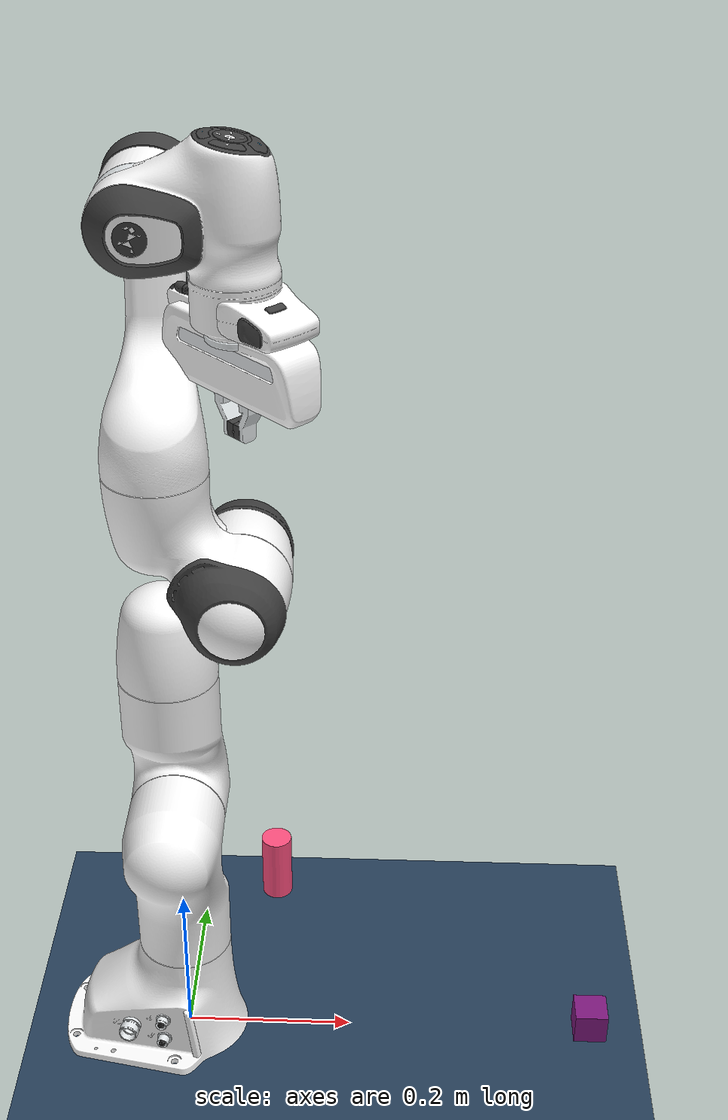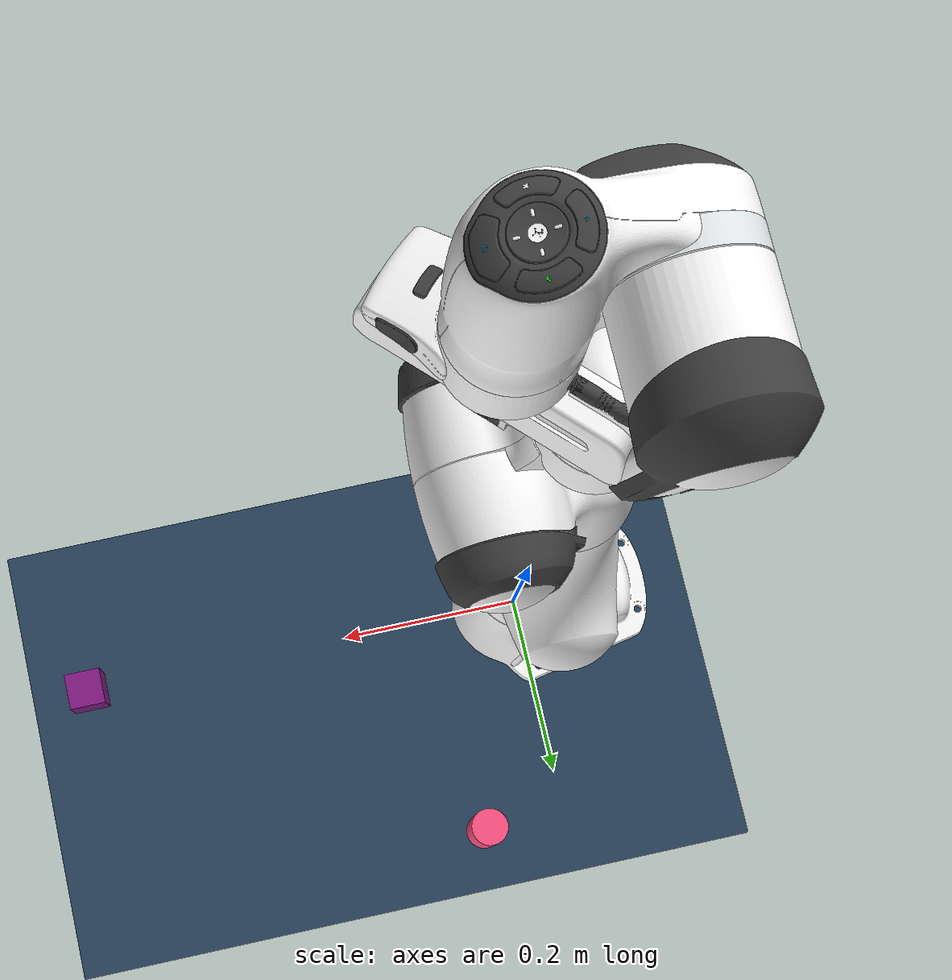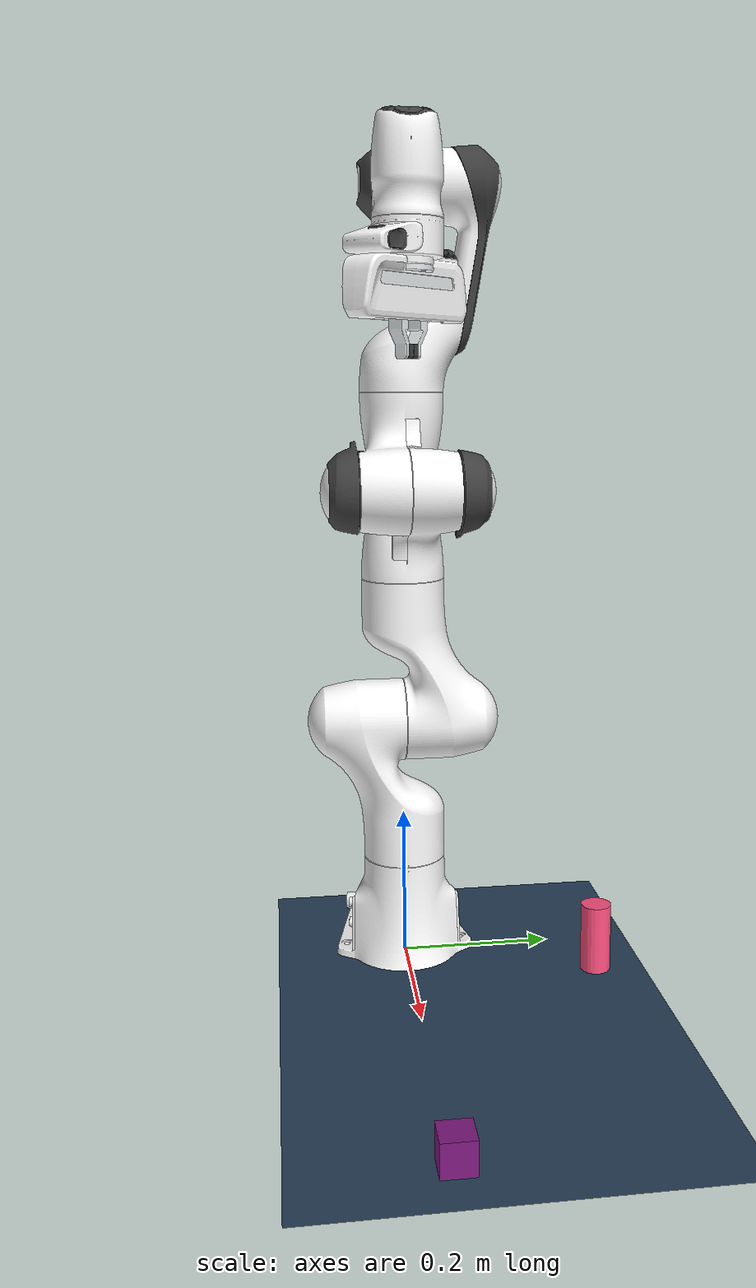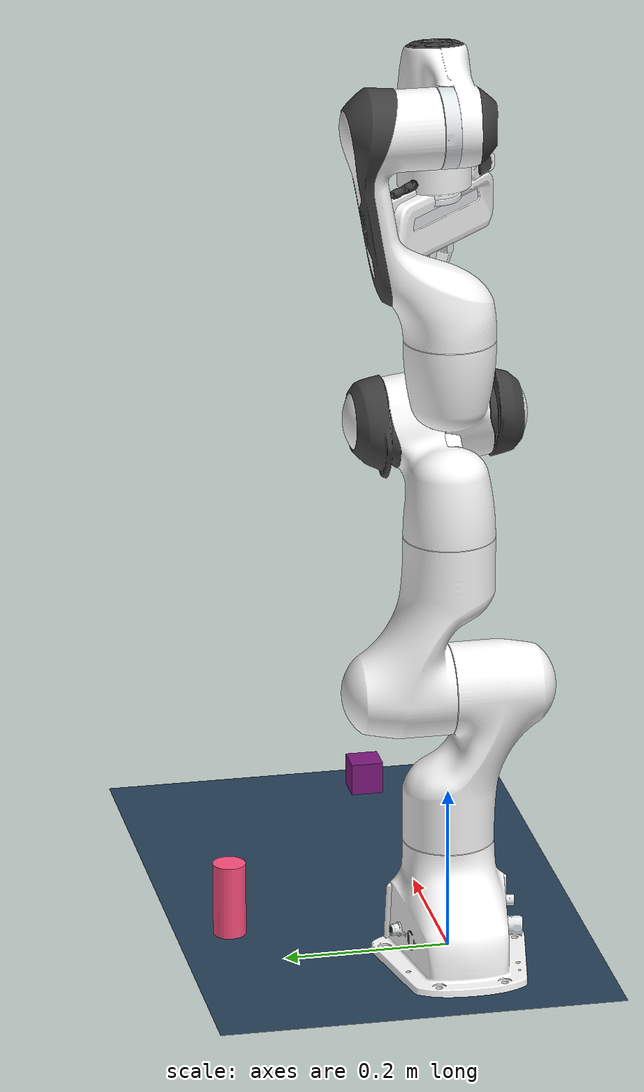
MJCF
<mujoco model="panda scene">

  <include file="panda_steer.xml"/>

  <statistic center="0.3 0 0.4" extent="1"/>

  <default>
    <default class="scene">
      <geom contype="10" conaffinity="10"></geom>
    </default>
  </default>

  <visual>
    <headlight diffuse="0.6 0.6 0.6" ambient="0.3 0.3 0.3" specular="0 0 0"/>
    <rgba haze="0.15 0.25 0.35 1"/>
    <global azimuth="120" elevation="-20"/>
  </visual>

  <asset>
    <texture type="skybox" builtin="gradient" rgb1="0.3 0.5 0.7" rgb2="0 0 0" width="512" height="3072"/>
    <texture type="2d" name="groundplane" builtin="checker" mark="edge" rgb1="0.2 0.3 0.4" rgb2="0.1 0.2 0.3"
      markrgb="0.8 0.8 0.8" width="300" height="300"/>
    <material name="groundplane" texture="groundplane" texuniform="true" texrepeat="5 5" reflectance="0.2"/>
  </asset>

  <worldbody>
    <light pos="0 0 1.5" dir="0 0 -1" directional="true"/>
    <geom name="floor" class="scene" size="0 0 0.05" type="plane" material="groundplane"/>
    <body name="box_body" pos="0.5 0 .02"> <!-- this is how you add an object to the scene -->
    	<freejoint name="box_joint"/>
    	<geom name="box_geom" contype="15" conaffinity="15" size=".02 .02 .02" type="box" rgba=".5 .1 .5 1" mass="0.05" friction="2" solimp="0.95 0.99 0.001" solref="0.005 1"/>
    </body>
    <body name="cyl_body" pos="0.0925 0.25 0.04">
    	<freejoint name="cyl_joint"/>
    	<geom name="cyl_geom" contype="0" conaffinity="0" size=".02 .05 .02" type="cylinder" rgba="1 .3125 .5 1" mass="0.05" friction="2" solimp="0.95 0.99 0.001" solref="0.005 1"/>
    </body>
    <body name="test" pos="0.0925 0.25 0.04">
    	<geom name="test" contype="0" conaffinity="0" size=".1 .1 .1" type="sphere" rgba="1 .3125 .5 0" mass="0.05" friction="2" solimp="0.95 0.99 0.001" solref="0.005 1"/>
    </body>

    <body name="body_cam" pos="3 0 .75" xyaxes="0 1 0 0 0 1" mocap="true">
      <camera name="cam" fovy="90"/>
      <geom name="geom_cam" size="0.04 0.04 0.01" type="box" rgba="0 0 0 0" contype="0" conaffinity="0"/>
    </body>
  </worldbody>

</mujoco>

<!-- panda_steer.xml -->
<mujoco model="panda steer">
  <compiler angle="radian" meshdir="assets" autolimits="true"/>

  <option integrator="implicitfast"/>

  <default>
    <default class="panda">
      <joint range="-2.8973 2.8973"/>
      <default class="inflate_gripper"> <!-- size_y = .015: even with gripper-->
        <geom type="box" size="0.01 0.015 0.0275" rgba="1 0 0 0" pos="0 0.015 0.025"/>
      </default>
      <default class="visual">
        <geom type="mesh" contype="0" conaffinity="0" group="2"/>
      </default>
      <default class="collision">
        <geom type="mesh" group="3"/>

        <default class="fingertip_pad_collision_1">
          <geom type="box" size="0.0085 0.004 0.0085" pos="0 0.0055 0.0445"/>
        </default>
        <default class="fingertip_pad_collision_2">
          <geom type="box" size="0.003 0.002 0.003" pos="0.0055 0.002 0.05"/>
        </default>
        <default class="fingertip_pad_collision_3">
          <geom type="box" size="0.003 0.002 0.003" pos="-0.0055 0.002 0.05"/>
        </default>
        <default class="fingertip_pad_collision_4">
          <geom type="box" size="0.003 0.002 0.0035" pos="0.0055 0.002 0.0395"/>
        </default>
        <default class="fingertip_pad_collision_5">
          <geom type="box" size="0.003 0.002 0.0035" pos="-0.0055 0.002 0.0395"/>
        </default>
      </default>
      <default class="position_actuation">
        <default class="big_joint">
          <position kp="2000" kv="200"/>
        </default>
        <default class="small_joint">
          <position kp="500" kv="50"/>
        </default>
      </default>

      <default class="finger">
        <joint axis="0 1 0" type="slide" range="0 0.04"/>
      </default>
    </default>
  </default>

  <asset>
    <material name="white" rgba="1 1 1 1"/>
    <material name="off_white" rgba="0.901961 0.921569 0.929412 1"/>
    <material name="dark_grey" rgba="0.25 0.25 0.25 1"/>
    <material name="green" rgba="0 1 0 1"/>
    <material name="light_blue" rgba="0.039216 0.541176 0.780392 1"/>
    <material name="black" rgba="0.25 0.25 0.25 1"/>

    <!-- Collision meshes -->
    <mesh name="link0_c" file="link0.stl"/>
    <mesh name="link1_c" file="link1.stl"/>
    <mesh name="link2_c" file="link2.stl"/>
    <mesh name="link3_c" file="link3.stl"/>
    <mesh name="link4_c" file="link4.stl"/>
    <mesh name="link5_c0" file="link5_collision_0.obj"/>
    <mesh name="link5_c1" file="link5_collision_1.obj"/>
    <mesh name="link5_c2" file="link5_collision_2.obj"/>
    <mesh name="link6_c" file="link6.stl"/>
    <mesh name="link7_c" file="link7.stl"/>
    <mesh name="hand_c" file="hand.stl"/>

    <!-- Visual meshes -->
    <mesh file="link0_0.obj"/>
    <mesh file="link0_1.obj"/>
    <mesh file="link0_2.obj"/>
    <mesh file="link0_3.obj"/>
    <mesh file="link0_4.obj"/>
    <mesh file="link0_5.obj"/>
    <mesh file="link0_7.obj"/>
    <mesh file="link0_8.obj"/>
    <mesh file="link0_9.obj"/>
    <mesh file="link0_10.obj"/>
    <mesh file="link0_11.obj"/>
    <mesh file="link1.obj"/>
    <mesh file="link2.obj"/>
    <mesh file="link3_0.obj"/>
    <mesh file="link3_1.obj"/>
    <mesh file="link3_2.obj"/>
    <mesh file="link3_3.obj"/>
    <mesh file="link4_0.obj"/>
    <mesh file="link4_1.obj"/>
    <mesh file="link4_2.obj"/>
    <mesh file="link4_3.obj"/>
    <mesh file="link5_0.obj"/>
    <mesh file="link5_1.obj"/>
    <mesh file="link5_2.obj"/>
    <mesh file="link6_0.obj"/>
    <mesh file="link6_1.obj"/>
    <mesh file="link6_2.obj"/>
    <mesh file="link6_3.obj"/>
    <mesh file="link6_4.obj"/>
    <mesh file="link6_5.obj"/>
    <mesh file="link6_6.obj"/>
    <mesh file="link6_7.obj"/>
    <mesh file="link6_8.obj"/>
    <mesh file="link6_9.obj"/>
    <mesh file="link6_10.obj"/>
    <mesh file="link6_11.obj"/>
    <mesh file="link6_12.obj"/>
    <mesh file="link6_13.obj"/>
    <mesh file="link6_14.obj"/>
    <mesh file="link6_15.obj"/>
    <mesh file="link6_16.obj"/>
    <mesh file="link7_0.obj"/>
    <mesh file="link7_1.obj"/>
    <mesh file="link7_2.obj"/>
    <mesh file="link7_3.obj"/>
    <mesh file="link7_4.obj"/>
    <mesh file="link7_5.obj"/>
    <mesh file="link7_6.obj"/>
    <mesh file="link7_7.obj"/>
    <mesh file="hand_0.obj"/>
    <mesh file="hand_1.obj"/>
    <mesh file="hand_2.obj"/>
    <mesh file="hand_3.obj"/>
    <mesh file="hand_4.obj"/>
    <mesh file="finger_0.obj"/>
    <mesh file="finger_1.obj"/>
  </asset>

  <worldbody>
    <light name="top" pos="0 0 2" mode="trackcom"/>
    <body name="link0" childclass="panda">
      <inertial mass="0.629769" pos="-0.041018 -0.00014 0.049974"
        fullinertia="0.00315 0.00388 0.004285 8.2904e-7 0.00015 8.2299e-6"/>
      <geom mesh="link0_0" material="off_white" class="visual"/>
      <geom mesh="link0_1" material="black" class="visual"/>
      <geom mesh="link0_2" material="off_white" class="visual"/>
      <geom mesh="link0_3" material="black" class="visual"/>
      <geom mesh="link0_4" material="off_white" class="visual"/>
      <geom mesh="link0_5" material="black" class="visual"/>
      <geom mesh="link0_7" material="white" class="visual"/>
      <geom mesh="link0_8" material="white" class="visual"/>
      <geom mesh="link0_9" material="black" class="visual"/>
      <geom mesh="link0_10" material="off_white" class="visual"/>
      <geom mesh="link0_11" material="white" class="visual"/>
      <geom mesh="link0_c" class="collision"/>
      <body name="link1" pos="0 0 0.333">
        <inertial mass="4.970684" pos="0.003875 0.002081 -0.04762"
          fullinertia="0.70337 0.70661 0.0091170 -0.00013900 0.0067720 0.019169"/>
        <joint name="base_yaw"/>
        <geom material="white" mesh="link1" class="visual"/>
        <geom mesh="link1_c" class="collision"/>
        <body name="link2" quat="1 -1 0 0">
          <inertial mass="0.646926" pos="-0.003141 -0.02872 0.003495"
            fullinertia="0.0079620 2.8110e-2 2.5995e-2 -3.925e-3 1.0254e-2 7.04e-4"/>
          <joint name="base_pitch" range="-1.7628 1.7628"/>
          <geom material="white" mesh="link2" class="visual"/>
          <geom mesh="link2_c" class="collision"/>
          <body name="link3" pos="0 -0.316 0" quat="1 1 0 0">
            <joint name="base_roll"/>
            <inertial mass="3.228604" pos="2.7518e-2 3.9252e-2 -6.6502e-2"
              fullinertia="3.7242e-2 3.6155e-2 1.083e-2 -4.761e-3 -1.1396e-2 -1.2805e-2"/>
            <geom mesh="link3_0" material="white" class="visual"/>
            <geom mesh="link3_1" material="white" class="visual"/>
            <geom mesh="link3_2" material="white" class="visual"/>
            <geom mesh="link3_3" material="black" class="visual"/>
            <geom mesh="link3_c" class="collision"/>
            <body name="link4" pos="0.0825 0 0" quat="1 1 0 0">
              <inertial mass="3.587895" pos="-5.317e-2 1.04419e-1 2.7454e-2"
                fullinertia="2.5853e-2 1.9552e-2 2.8323e-2 7.796e-3 -1.332e-3 8.641e-3"/>
              <joint name="joint_1_pitch" range="-3.0718 -0.0698"/>
              <geom mesh="link4_0" material="white" class="visual"/>
              <geom mesh="link4_1" material="white" class="visual"/>
              <geom mesh="link4_2" material="black" class="visual"/>
              <geom mesh="link4_3" material="white" class="visual"/>
              <geom mesh="link4_c" class="collision"/>
              <body name="link5" pos="-0.0825 0.384 0" quat="1 -1 0 0">
                <inertial mass="1.225946" pos="-1.1953e-2 4.1065e-2 -3.8437e-2"
                  fullinertia="3.5549e-2 2.9474e-2 8.627e-3 -2.117e-3 -4.037e-3 2.29e-4"/>
                <joint name="joint_1_roll"/>
                <geom mesh="link5_0" material="black" class="visual"/>
                <geom mesh="link5_1" material="white" class="visual"/>
                <geom mesh="link5_2" material="white" class="visual"/>
                <geom mesh="link5_c0" class="collision"/>
                <geom mesh="link5_c1" class="collision"/>
                <geom mesh="link5_c2" class="collision"/>
                <body name="link6" quat="1 1 0 0">
                  <inertial mass="1.666555" pos="6.0149e-2 -1.4117e-2 -1.0517e-2"
                    fullinertia="1.964e-3 4.354e-3 5.433e-3 1.09e-4 -1.158e-3 3.41e-4"/>
                  <joint name="joint_2_pitch" range="-0.0175 3.7525"/>
                  <geom mesh="link6_0" material="off_white" class="visual"/>
                  <geom mesh="link6_1" material="white" class="visual"/>
                  <geom mesh="link6_2" material="black" class="visual"/>
                  <geom mesh="link6_3" material="white" class="visual"/>
                  <geom mesh="link6_4" material="white" class="visual"/>
                  <geom mesh="link6_5" material="white" class="visual"/>
                  <geom mesh="link6_6" material="white" class="visual"/>
                  <geom mesh="link6_7" material="light_blue" class="visual"/>
                  <geom mesh="link6_8" material="light_blue" class="visual"/>
                  <geom mesh="link6_9" material="black" class="visual"/>
                  <geom mesh="link6_10" material="black" class="visual"/>
                  <geom mesh="link6_11" material="white" class="visual"/>
                  <geom mesh="link6_12" material="green" class="visual"/>
                  <geom mesh="link6_13" material="white" class="visual"/>
                  <geom mesh="link6_14" material="black" class="visual"/>
                  <geom mesh="link6_15" material="black" class="visual"/>
                  <geom mesh="link6_16" material="white" class="visual"/>
                  <geom mesh="link6_c" class="collision"/>
                  <body name="link7" pos="0.088 0 0" quat="1 1 0 0">
                    <inertial mass="7.35522e-01" pos="1.0517e-2 -4.252e-3 6.1597e-2"
                      fullinertia="1.2516e-2 1.0027e-2 4.815e-3 -4.28e-4 -1.196e-3 -7.41e-4"/>
                    <joint name="joint_2_roll"/>
                    <geom mesh="link7_0" material="white" class="visual"/>
                    <geom mesh="link7_1" material="black" class="visual"/>
                    <geom mesh="link7_2" material="black" class="visual"/>
                    <geom mesh="link7_3" material="black" class="visual"/>
                    <geom mesh="link7_4" material="black" class="visual"/>
                    <geom mesh="link7_5" material="black" class="visual"/>
                    <geom mesh="link7_6" material="black" class="visual"/>
                    <geom mesh="link7_7" material="white" class="visual"/>
                    <geom mesh="link7_c" class="collision"/>
                    <body name="hand" pos="0 0 0.107" quat="0.9238795 0 0 -0.3826834">
                      <inertial mass="0.73" pos="-0.01 0 0.03" diaginertia="0.001 0.0025 0.0017"/>
                      <geom mesh="hand_0" material="off_white" class="visual"/>
                      <geom mesh="hand_1" material="black" class="visual"/>
                      <geom mesh="hand_2" material="black" class="visual"/>
                      <geom mesh="hand_3" material="white" class="visual"/>
                      <geom mesh="hand_4" material="off_white" class="visual"/>
                      <geom mesh="hand_c" class="collision"/>
                      <body name="left_finger" pos="0 0 0.0584">
                        <inertial mass="0.015" pos="0 0 0" diaginertia="2.375e-6 2.375e-6 7.5e-7"/>
                        <joint name="finger_joint1" class="finger"/>
                        <geom mesh="finger_0" material="off_white" class="visual"/>
                        <geom mesh="finger_1" material="black" class="visual"/>
                        <geom mesh="finger_0" class="collision" friction="1" solimp="0.95 0.99 0.001 0.5 2"/> <!-- KTAG adjusted this to reduce slipping -->
                        <geom class="fingertip_pad_collision_1" friction="1"/>
                        <geom class="fingertip_pad_collision_2" friction="1"/>
                        <geom class="fingertip_pad_collision_3" friction="1"/>
                        <geom class="fingertip_pad_collision_4" friction="1"/>
                        <geom class="fingertip_pad_collision_5" friction="1"/>
                        <geom name="inflate_gripper1" class="inflate_gripper"/>
                      </body>
                      <body name="right_finger" pos="0 0 0.0584" quat="0 0 0 1">
                        <inertial mass="0.015" pos="0 0 0" diaginertia="2.375e-6 2.375e-6 7.5e-7"/>
                        <joint name="finger_joint2" class="finger"/>
                        <geom mesh="finger_0" material="off_white" class="visual"/>
                        <geom mesh="finger_1" material="black" class="visual"/>
                        <geom mesh="finger_0" class="collision" friction="1" solimp="0.95 0.99 0.001 0.5 2"/> <!-- KTAG adjusted this to reduce slipping -->
                        <geom class="fingertip_pad_collision_1" friction="1"/>
                        <geom class="fingertip_pad_collision_2" friction="1"/>
                        <geom class="fingertip_pad_collision_3" friction="1"/>
                        <geom class="fingertip_pad_collision_4" friction="1"/>
                        <geom class="fingertip_pad_collision_5" friction="1"/>
                        <geom name="inflate_gripper2" class="inflate_gripper"/>
                      </body>
                    </body>
                  </body>
                </body>
              </body>
            </body>
          </body>
        </body>
      </body>
    </body>
  </worldbody>

  <tendon>
    <fixed name="split">
      <joint joint="finger_joint1" coef="0.5"/>
      <joint joint="finger_joint2" coef="0.5"/>
    </fixed>
  </tendon>

  <equality>
    <joint joint1="finger_joint1" joint2="finger_joint2" solimp="0.95 0.99 0.001" solref="0.005 1"/>
  </equality>

  <actuator>
    <position class="big_joint" name="base_yaw" joint="base_yaw" forcerange="-87 87" ctrlrange="-2.8973 2.8973"/>
    <position class="big_joint" name="base_pitch" joint="base_pitch" forcerange="-87 87" ctrlrange="-1.7628 1.7628"/>
    <position class="big_joint" name="base_roll" joint="base_roll" forcerange="-87 87" ctrlrange="-2.8973 2.8973"/>
    <position class="big_joint" name="joint_1_pitch" joint="joint_1_pitch" forcerange="-87 87" ctrlrange="-3.0718 -0.0698"/>
    <position class="small_joint" name="joint_1_roll" joint="joint_1_roll" forcerange="-12 12" ctrlrange="-2.8973 2.8973"/>
    <position class="small_joint" name="joint_2_pitch" joint="joint_2_pitch" forcerange="-12 12" ctrlrange="-0.0175 3.7525"/>
    <position class="small_joint" name="joint_2_roll" joint="joint_2_roll" forcerange="-12 12" ctrlrange="-2.8973 2.8973"/>
    <general class="panda" name="grip" tendon="split" forcerange="-100 100" ctrlrange="0 255"
      gainprm="0.01568627451 0 0" biasprm="0 -100 -10"/>
  </actuator>

</mujoco>
